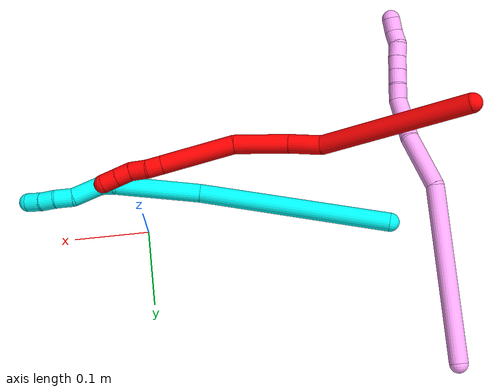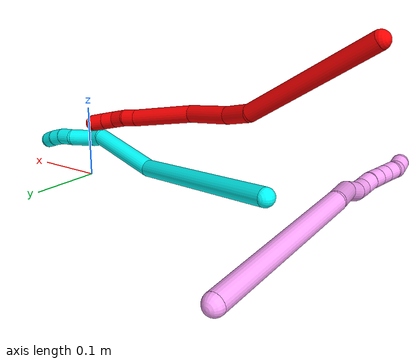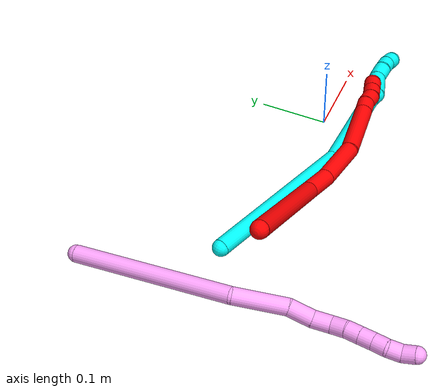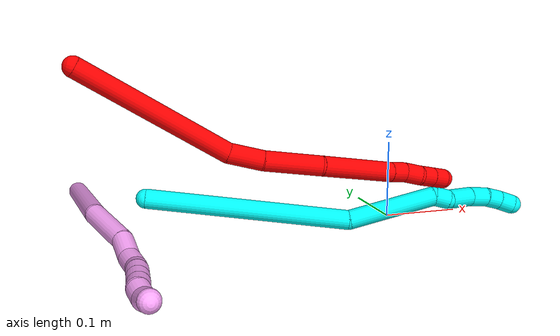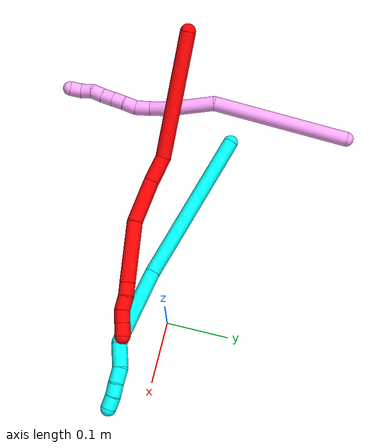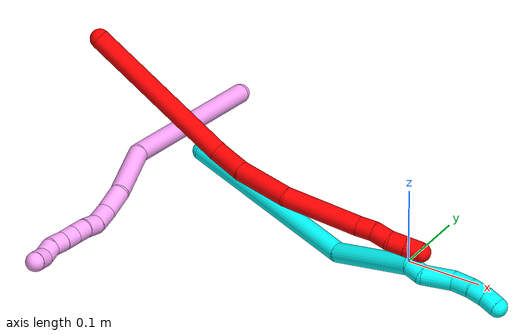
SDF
<sdf version="1.7">
 <world name="default">
  <model name="photoneo_s_sensor">
   <static>1</static>
   <pose>0 0 2 1.57079 1.57079 3.14159</pose>
   <link name="link">
    <inertial><mass>0.1</mass></inertial>
    <sensor name="sensor" type="depth">
     <update_rate>30</update_rate>
     <camera>
      <horizontal_fov>1.22</horizontal_fov>
      <image><width>1920</width><height>1200</height><format>B8G8R8</format></image>
      <clip><near>0.1</near><far>4</far></clip>
      <depth_camera><output>points</output></depth_camera>
     </camera>
     <plugin name="camera_plugin" filename="libgazebo_ros_depth_camera.so">
      <baseline>0.2</baseline>
      <alwaysOn>1</alwaysOn>
      <updateRate>0.0</updateRate>
      <cameraName>camera_ir</cameraName>
      <imageTopicName>/camera/color/image_raw</imageTopicName>
      <cameraInfoTopicName>/camera/color/camera_info</cameraInfoTopicName>
      <depthImageTopicName>/camera/depth/image_raw</depthImageTopicName>
      <depthImageCameraInfoTopicName>/camera/depth/camera_info</depthImageCameraInfoTopicName>
      <pointCloudTopicName>/camera/depth/points</pointCloudTopicName>
      <frameName>fr_optical</frameName>
      <pointCloudCutoff>0.1</pointCloudCutoff>
      <pointCloudCutoffMax>2.0</pointCloudCutoffMax>
      <distortionK1>0</distortionK1>
      <distortionK2>0</distortionK2>
      <distortionK3>0</distortionK3>
      <distortionT1>0</distortionT1>
      <distortionT2>0</distortionT2>
      <CxPrime>0</CxPrime>
      <Cx>0</Cx>
      <Cy>0</Cy>
      <focalLength>0</focalLength>
      <hackBaseline>0</hackBaseline>
     </plugin>
    </sensor>
   </link>
  </model>
  <model name="bin">
   <static>1</static>
   <link name="bottom">
    <collision name="collision-bottom">
     <pose>0 0 -0.01 0 -0 0</pose>
     <geometry><box><size>0.8 0.6 0.02</size></box></geometry>
     <surface>
      <friction><ode><mu>100</mu><mu2>100</mu2></ode></friction>
      <contact><collide_bitmask>65535</collide_bitmask></contact>
     </surface>
    </collision>
   </link>
   <link name="west_wall">
    <collision name="collision-west_wall">
     <pose>-0.41 0 0.1 0 -0 0</pose>
     <geometry><box><size>0.02 0.6 0.2</size></box></geometry>
     <surface>
      <friction><ode><mu>100</mu><mu2>100</mu2></ode></friction>
      <contact><collide_bitmask>65535</collide_bitmask></contact>
     </surface>
    </collision>
   </link>
   <link name="east_wall">
    <collision name="collision-east_wall">
     <pose>0.41 0 0.1 0 -0 0</pose>
     <geometry><box><size>0.02 0.6 0.2</size></box></geometry>
     <surface>
      <friction><ode><mu>100</mu><mu2>100</mu2></ode></friction>
      <contact><collide_bitmask>65535</collide_bitmask></contact>
     </surface>
    </collision>
   </link>
   <link name="south_wall">
    <collision name="collision-south_wall">
     <pose>0 -0.31 0.1 0 -0 0</pose>
     <geometry><box><size>0.8 0.02 0.2</size></box></geometry>
     <surface>
      <friction><ode><mu>100</mu><mu2>100</mu2></ode></friction>
      <contact><collide_bitmask>65535</collide_bitmask></contact>
     </surface>
    </collision>
   </link>
   <link name="north_wall">
    <collision name="collision-north_wall">
     <pose>0 0.31 0.1 0 -0 0</pose>
     <geometry><box><size>0.8 0.02 0.2</size></box></geometry>
     <surface>
      <friction><ode><mu>100</mu><mu2>100</mu2></ode></friction>
      <contact><collide_bitmask>65535</collide_bitmask></contact>
     </surface>
    </collision>
   </link>
  </model>
  <model name="2">
   <static>0</static>
   <link name="2">
    <collision name="collision-cylinder-e_1_1_4">
     <pose>0.002071 0.029109 -0.097416 -2.85123 0.020362 -0.139044</pose>
     <geometry><cylinder><radius>0.0125</radius><length>0.203386</length></cylinder></geometry>
     <surface>
      <friction><ode><mu>1.16</mu><mu2>1.16</mu2><slip1>0</slip1><slip2>0</slip2></ode></friction>
      <contact><ode><kp>1e+06</kp><kd>1</kd><max_vel>0</max_vel><min_depth>0.001</min_depth></ode></contact>
     </surface>
    </collision>
    <visual name="visual-cylinder-e_1_1_4">
     <pose>0.002071 0.029109 -0.097416 -2.85123 0.020362 -0.139044</pose>
     <geometry><cylinder><radius>0.0125</radius><length>0.203386</length></cylinder></geometry>
     <material><ambient>1 0 0 1</ambient></material>
    </visual>
    <collision name="collision-cylinder-e_2_4_5">
     <pose>0.001242 0.056971 -0.216196 3.0833 -0.134659 -2.32543</pose>
     <geometry><cylinder><radius>0.0125</radius><length>0.043192</length></cylinder></geometry>
     <surface>
      <friction><ode><mu>1.16</mu><mu2>1.16</mu2><slip1>0</slip1><slip2>0</slip2></ode></friction>
      <contact><ode><kp>1e+06</kp><kd>1</kd><max_vel>0</max_vel><min_depth>0.001</min_depth></ode></contact>
     </surface>
    </collision>
    <visual name="visual-cylinder-e_2_4_5">
     <pose>0.001242 0.056971 -0.216196 3.0833 -0.134659 -2.32543</pose>
     <geometry><cylinder><radius>0.0125</radius><length>0.043192</length></cylinder></geometry>
     <material><ambient>1 0 0 1</ambient></material>
    </visual>
    <collision name="collision-cylinder-e_3_5_6">
     <pose>-0.002599 0.050371 -0.272838 2.99101 -0.026366 -0.346064</pose>
     <geometry><cylinder><radius>0.0125</radius><length>0.071389</length></cylinder></geometry>
     <surface>
      <friction><ode><mu>1.16</mu><mu2>1.16</mu2><slip1>0</slip1><slip2>0</slip2></ode></friction>
      <contact><ode><kp>1e+06</kp><kd>1</kd><max_vel>0</max_vel><min_depth>0.001</min_depth></ode></contact>
     </surface>
    </collision>
    <visual name="visual-cylinder-e_3_5_6">
     <pose>-0.002599 0.050371 -0.272838 2.99101 -0.026366 -0.346064</pose>
     <geometry><cylinder><radius>0.0125</radius><length>0.071389</length></cylinder></geometry>
     <material><ambient>1 0 0 1</ambient></material>
    </visual>
    <collision name="collision-cylinder-e_4_6_7">
     <pose>0.007319 0.042237 -0.355905 3.08344 0.223071 2.63348</pose>
     <geometry><cylinder><radius>0.0125</radius><length>0.098171</length></cylinder></geometry>
     <surface>
      <friction><ode><mu>1.16</mu><mu2>1.16</mu2><slip1>0</slip1><slip2>0</slip2></ode></friction>
      <contact><ode><kp>1e+06</kp><kd>1</kd><max_vel>0</max_vel><min_depth>0.001</min_depth></ode></contact>
     </surface>
    </collision>
    <visual name="visual-cylinder-e_4_6_7">
     <pose>0.007319 0.042237 -0.355905 3.08344 0.223071 2.63348</pose>
     <geometry><cylinder><radius>0.0125</radius><length>0.098171</length></cylinder></geometry>
     <material><ambient>1 0 0 1</ambient></material>
    </visual>
    <collision name="collision-cylinder-e_5_7_8">
     <pose>0.020771 0.038281 -0.41366 3.02443 0.252845 2.27695</pose>
     <geometry><cylinder><radius>0.0125</radius><length>0.020731</length></cylinder></geometry>
     <surface>
      <friction><ode><mu>1.16</mu><mu2>1.16</mu2><slip1>0</slip1><slip2>0</slip2></ode></friction>
      <contact><ode><kp>1e+06</kp><kd>1</kd><max_vel>0</max_vel><min_depth>0.001</min_depth></ode></contact>
     </surface>
    </collision>
    <visual name="visual-cylinder-e_5_7_8">
     <pose>0.020771 0.038281 -0.41366 3.02443 0.252845 2.27695</pose>
     <geometry><cylinder><radius>0.0125</radius><length>0.020731</length></cylinder></geometry>
     <material><ambient>1 0 0 1</ambient></material>
    </visual>
    <collision name="collision-cylinder-e_6_8_9">
     <pose>0.023921 0.036934 -0.434829 3.12602 0.049661 2.53407</pose>
     <geometry><cylinder><radius>0.0125</radius><length>0.022433</length></cylinder></geometry>
     <surface>
      <friction><ode><mu>1.16</mu><mu2>1.16</mu2><slip1>0</slip1><slip2>0</slip2></ode></friction>
      <contact><ode><kp>1e+06</kp><kd>1</kd><max_vel>0</max_vel><min_depth>0.001</min_depth></ode></contact>
     </surface>
    </collision>
    <visual name="visual-cylinder-e_6_8_9">
     <pose>0.023921 0.036934 -0.434829 3.12602 0.049661 2.53407</pose>
     <geometry><cylinder><radius>0.0125</radius><length>0.022433</length></cylinder></geometry>
     <material><ambient>1 0 0 1</ambient></material>
    </visual>
    <collision name="collision-cylinder-e_7_9_10">
     <pose>0.027798 0.037009 -0.455509 -3.11526 0.336842 -2.98704</pose>
     <geometry><cylinder><radius>0.0125</radius><length>0.020094</length></cylinder></geometry>
     <surface>
      <friction><ode><mu>1.16</mu><mu2>1.16</mu2><slip1>0</slip1><slip2>0</slip2></ode></friction>
      <contact><ode><kp>1e+06</kp><kd>1</kd><max_vel>0</max_vel><min_depth>0.001</min_depth></ode></contact>
     </surface>
    </collision>
    <visual name="visual-cylinder-e_7_9_10">
     <pose>0.027798 0.037009 -0.455509 -3.11526 0.336842 -2.98704</pose>
     <geometry><cylinder><radius>0.0125</radius><length>0.020094</length></cylinder></geometry>
     <material><ambient>1 0 0 1</ambient></material>
    </visual>
    <collision name="collision-cylinder-e_8_10_2">
     <pose>0.034478 0.037571 -0.474722 -3.10948 0.332156 -2.95061</pose>
     <geometry><cylinder><radius>0.0125</radius><length>0.020604</length></cylinder></geometry>
     <surface>
      <friction><ode><mu>1.16</mu><mu2>1.16</mu2><slip1>0</slip1><slip2>0</slip2></ode></friction>
      <contact><ode><kp>1e+06</kp><kd>1</kd><max_vel>0</max_vel><min_depth>0.001</min_depth></ode></contact>
     </surface>
    </collision>
    <visual name="visual-cylinder-e_8_10_2">
     <pose>0.034478 0.037571 -0.474722 -3.10948 0.332156 -2.95061</pose>
     <geometry><cylinder><radius>0.0125</radius><length>0.020604</length></cylinder></geometry>
     <material><ambient>1 0 0 1</ambient></material>
    </visual>
    <collision name="collision-sphere-2">
     <pose>0.037838 0.037884 -0.484456 0 -0 0</pose>
     <geometry><sphere><radius>0.0125</radius></sphere></geometry>
     <surface>
      <friction><ode><mu>1.16</mu><mu2>1.16</mu2><slip1>0</slip1><slip2>0</slip2></ode></friction>
      <contact><ode><kp>1e+06</kp><kd>1</kd><max_vel>0</max_vel><min_depth>0.001</min_depth></ode></contact>
     </surface>
    </collision>
    <visual name="visual-sphere-2">
     <pose>0.037838 0.037884 -0.484456 0 -0 0</pose>
     <geometry><sphere><radius>0.0125</radius></sphere></geometry>
     <material><ambient>1 0 0 1</ambient></material>
    </visual>
    <collision name="collision-sphere-10">
     <pose>0.031119 0.037259 -0.464989 0 -0 0</pose>
     <geometry><sphere><radius>0.0125</radius></sphere></geometry>
     <surface>
      <friction><ode><mu>1.16</mu><mu2>1.16</mu2><slip1>0</slip1><slip2>0</slip2></ode></friction>
      <contact><ode><kp>1e+06</kp><kd>1</kd><max_vel>0</max_vel><min_depth>0.001</min_depth></ode></contact>
     </surface>
    </collision>
    <visual name="visual-sphere-10">
     <pose>0.031119 0.037259 -0.464989 0 -0 0</pose>
     <geometry><sphere><radius>0.0125</radius></sphere></geometry>
     <material><ambient>1 0 0 1</ambient></material>
    </visual>
    <collision name="collision-sphere-9">
     <pose>0.024478 0.036759 -0.44603 0 -0 0</pose>
     <geometry><sphere><radius>0.0125</radius></sphere></geometry>
     <surface>
      <friction><ode><mu>1.16</mu><mu2>1.16</mu2><slip1>0</slip1><slip2>0</slip2></ode></friction>
      <contact><ode><kp>1e+06</kp><kd>1</kd><max_vel>0</max_vel><min_depth>0.001</min_depth></ode></contact>
     </surface>
    </collision>
    <visual name="visual-sphere-9">
     <pose>0.024478 0.036759 -0.44603 0 -0 0</pose>
     <geometry><sphere><radius>0.0125</radius></sphere></geometry>
     <material><ambient>1 0 0 1</ambient></material>
    </visual>
    <collision name="collision-sphere-4">
     <pose>0.004141 0.058217 -0.194831 0 -0 0</pose>
     <geometry><sphere><radius>0.0125</radius></sphere></geometry>
     <surface>
      <friction><ode><mu>1.16</mu><mu2>1.16</mu2><slip1>0</slip1><slip2>0</slip2></ode></friction>
      <contact><ode><kp>1e+06</kp><kd>1</kd><max_vel>0</max_vel><min_depth>0.001</min_depth></ode></contact>
     </surface>
    </collision>
    <visual name="visual-sphere-4">
     <pose>0.004141 0.058217 -0.194831 0 -0 0</pose>
     <geometry><sphere><radius>0.0125</radius></sphere></geometry>
     <material><ambient>1 0 0 1</ambient></material>
    </visual>
    <collision name="collision-sphere-1">
     <geometry><sphere><radius>0.0125</radius></sphere></geometry>
     <surface>
      <friction><ode><mu>1.16</mu><mu2>1.16</mu2><slip1>0</slip1><slip2>0</slip2></ode></friction>
      <contact><ode><kp>1e+06</kp><kd>1</kd><max_vel>0</max_vel><min_depth>0.001</min_depth></ode></contact>
     </surface>
    </collision>
    <visual name="visual-sphere-1">
     <geometry><sphere><radius>0.0125</radius></sphere></geometry>
     <material><ambient>1 0 0 1</ambient></material>
    </visual>
    <collision name="collision-sphere-8">
     <pose>0.023364 0.037108 -0.423627 0 -0 0</pose>
     <geometry><sphere><radius>0.0125</radius></sphere></geometry>
     <surface>
      <friction><ode><mu>1.16</mu><mu2>1.16</mu2><slip1>0</slip1><slip2>0</slip2></ode></friction>
      <contact><ode><kp>1e+06</kp><kd>1</kd><max_vel>0</max_vel><min_depth>0.001</min_depth></ode></contact>
     </surface>
    </collision>
    <visual name="visual-sphere-8">
     <pose>0.023364 0.037108 -0.423627 0 -0 0</pose>
     <geometry><sphere><radius>0.0125</radius></sphere></geometry>
     <material><ambient>1 0 0 1</ambient></material>
    </visual>
    <collision name="collision-sphere-5">
     <pose>-0.001658 0.055724 -0.23756 0 -0 0</pose>
     <geometry><sphere><radius>0.0125</radius></sphere></geometry>
     <surface>
      <friction><ode><mu>1.16</mu><mu2>1.16</mu2><slip1>0</slip1><slip2>0</slip2></ode></friction>
      <contact><ode><kp>1e+06</kp><kd>1</kd><max_vel>0</max_vel><min_depth>0.001</min_depth></ode></contact>
     </surface>
    </collision>
    <visual name="visual-sphere-5">
     <pose>-0.001658 0.055724 -0.23756 0 -0 0</pose>
     <geometry><sphere><radius>0.0125</radius></sphere></geometry>
     <material><ambient>1 0 0 1</ambient></material>
    </visual>
    <collision name="collision-sphere-6">
     <pose>-0.00354 0.045019 -0.308117 0 -0 0</pose>
     <geometry><sphere><radius>0.0125</radius></sphere></geometry>
     <surface>
      <friction><ode><mu>1.16</mu><mu2>1.16</mu2><slip1>0</slip1><slip2>0</slip2></ode></friction>
      <contact><ode><kp>1e+06</kp><kd>1</kd><max_vel>0</max_vel><min_depth>0.001</min_depth></ode></contact>
     </surface>
    </collision>
    <visual name="visual-sphere-6">
     <pose>-0.00354 0.045019 -0.308117 0 -0 0</pose>
     <geometry><sphere><radius>0.0125</radius></sphere></geometry>
     <material><ambient>1 0 0 1</ambient></material>
    </visual>
    <collision name="collision-sphere-7">
     <pose>0.018178 0.039455 -0.403693 0 -0 0</pose>
     <geometry><sphere><radius>0.0125</radius></sphere></geometry>
     <surface>
      <friction><ode><mu>1.16</mu><mu2>1.16</mu2><slip1>0</slip1><slip2>0</slip2></ode></friction>
      <contact><ode><kp>1e+06</kp><kd>1</kd><max_vel>0</max_vel><min_depth>0.001</min_depth></ode></contact>
     </surface>
    </collision>
    <visual name="visual-sphere-7">
     <pose>0.018178 0.039455 -0.403693 0 -0 0</pose>
     <geometry><sphere><radius>0.0125</radius></sphere></geometry>
     <material><ambient>1 0 0 1</ambient></material>
    </visual>
    <inertial>
     <pose>0.006488 0.038527 -0.241665 0 -0 0</pose>
     <mass>0.5</mass>
     <inertia>
      <ixx>0.00058</ixx>
      <ixy>0</ixy>
      <ixz>0</ixz>
      <iyy>-0.000691</iyy>
      <iyz>0</iyz>
      <izz>-0.000263</izz>
     </inertia>
    </inertial>
   </link>
   <pose>-0.40949 -0.06285 0.21949 -1.29478 -0.165984 1.44182</pose>
  </model>
  <model name="3">
   <static>0</static>
   <link name="3">
    <collision name="collision-cylinder-e_1_1_4">
     <pose>0.129439 -0.007885 0.00117 1.42351 1.50929 1.36295</pose>
     <geometry><cylinder><radius>0.0125</radius><length>0.259368</length></cylinder></geometry>
     <surface>
      <friction><ode><mu>1.16</mu><mu2>1.16</mu2><slip1>0</slip1><slip2>0</slip2></ode></friction>
      <contact><ode><kp>1e+06</kp><kd>1</kd><max_vel>0</max_vel><min_depth>0.001</min_depth></ode></contact>
     </surface>
    </collision>
    <visual name="visual-cylinder-e_1_1_4">
     <pose>0.129439 -0.007885 0.00117 1.42351 1.50929 1.36295</pose>
     <geometry><cylinder><radius>0.0125</radius><length>0.259368</length></cylinder></geometry>
     <material><ambient>0.003922 1 0.996078 1</ambient></material>
    </visual>
    <collision name="collision-cylinder-e_2_4_5">
     <pose>0.313753 0.000741 -0.005398 -2.00903 1.25 -1.69699</pose>
     <geometry><cylinder><radius>0.0125</radius><length>0.115651</length></cylinder></geometry>
     <surface>
      <friction><ode><mu>1.16</mu><mu2>1.16</mu2><slip1>0</slip1><slip2>0</slip2></ode></friction>
      <contact><ode><kp>1e+06</kp><kd>1</kd><max_vel>0</max_vel><min_depth>0.001</min_depth></ode></contact>
     </surface>
    </collision>
    <visual name="visual-cylinder-e_2_4_5">
     <pose>0.313753 0.000741 -0.005398 -2.00903 1.25 -1.69699</pose>
     <geometry><cylinder><radius>0.0125</radius><length>0.115651</length></cylinder></geometry>
     <material><ambient>0.003922 1 0.996078 1</ambient></material>
    </visual>
    <collision name="collision-cylinder-e_3_5_6">
     <pose>0.378515 0.015105 -0.014428 2.11282 1.32253 1.88532</pose>
     <geometry><cylinder><radius>0.0125</radius><length>0.020398</length></cylinder></geometry>
     <surface>
      <friction><ode><mu>1.16</mu><mu2>1.16</mu2><slip1>0</slip1><slip2>0</slip2></ode></friction>
      <contact><ode><kp>1e+06</kp><kd>1</kd><max_vel>0</max_vel><min_depth>0.001</min_depth></ode></contact>
     </surface>
    </collision>
    <visual name="visual-cylinder-e_3_5_6">
     <pose>0.378515 0.015105 -0.014428 2.11282 1.32253 1.88532</pose>
     <geometry><cylinder><radius>0.0125</radius><length>0.020398</length></cylinder></geometry>
     <material><ambient>0.003922 1 0.996078 1</ambient></material>
    </visual>
    <collision name="collision-cylinder-e_4_6_7">
     <pose>0.404781 0.013081 -0.02664 -3.13027 0.9828 -3.12043</pose>
     <geometry><cylinder><radius>0.0125</radius><length>0.039372</length></cylinder></geometry>
     <surface>
      <friction><ode><mu>1.16</mu><mu2>1.16</mu2><slip1>0</slip1><slip2>0</slip2></ode></friction>
      <contact><ode><kp>1e+06</kp><kd>1</kd><max_vel>0</max_vel><min_depth>0.001</min_depth></ode></contact>
     </surface>
    </collision>
    <visual name="visual-cylinder-e_4_6_7">
     <pose>0.404781 0.013081 -0.02664 -3.13027 0.9828 -3.12043</pose>
     <geometry><cylinder><radius>0.0125</radius><length>0.039372</length></cylinder></geometry>
     <material><ambient>0.003922 1 0.996078 1</ambient></material>
    </visual>
    <collision name="collision-cylinder-e_5_7_8">
     <pose>0.433065 0.012882 -0.040718 3.03957 1.3101 3.00887</pose>
     <geometry><cylinder><radius>0.0125</radius><length>0.024642</length></cylinder></geometry>
     <surface>
      <friction><ode><mu>1.16</mu><mu2>1.16</mu2><slip1>0</slip1><slip2>0</slip2></ode></friction>
      <contact><ode><kp>1e+06</kp><kd>1</kd><max_vel>0</max_vel><min_depth>0.001</min_depth></ode></contact>
     </surface>
    </collision>
    <visual name="visual-cylinder-e_5_7_8">
     <pose>0.433065 0.012882 -0.040718 3.03957 1.3101 3.00887</pose>
     <geometry><cylinder><radius>0.0125</radius><length>0.024642</length></cylinder></geometry>
     <material><ambient>0.003922 1 0.996078 1</ambient></material>
    </visual>
    <collision name="collision-cylinder-e_6_8_9">
     <pose>0.454488 0.010332 -0.046674 2.46925 1.21158 2.20716</pose>
     <geometry><cylinder><radius>0.0125</radius><length>0.020336</length></cylinder></geometry>
     <surface>
      <friction><ode><mu>1.16</mu><mu2>1.16</mu2><slip1>0</slip1><slip2>0</slip2></ode></friction>
      <contact><ode><kp>1e+06</kp><kd>1</kd><max_vel>0</max_vel><min_depth>0.001</min_depth></ode></contact>
     </surface>
    </collision>
    <visual name="visual-cylinder-e_6_8_9">
     <pose>0.454488 0.010332 -0.046674 2.46925 1.21158 2.20716</pose>
     <geometry><cylinder><radius>0.0125</radius><length>0.020336</length></cylinder></geometry>
     <material><ambient>0.003922 1 0.996078 1</ambient></material>
    </visual>
    <collision name="collision-cylinder-e_7_9_2">
     <pose>0.473609 0.005212 -0.050802 2.00205 1.25051 1.68989</pose>
     <geometry><cylinder><radius>0.0125</radius><length>0.020234</length></cylinder></geometry>
     <surface>
      <friction><ode><mu>1.16</mu><mu2>1.16</mu2><slip1>0</slip1><slip2>0</slip2></ode></friction>
      <contact><ode><kp>1e+06</kp><kd>1</kd><max_vel>0</max_vel><min_depth>0.001</min_depth></ode></contact>
     </surface>
    </collision>
    <visual name="visual-cylinder-e_7_9_2">
     <pose>0.473609 0.005212 -0.050802 2.00205 1.25051 1.68989</pose>
     <geometry><cylinder><radius>0.0125</radius><length>0.020234</length></cylinder></geometry>
     <material><ambient>0.003922 1 0.996078 1</ambient></material>
    </visual>
    <collision name="collision-sphere-2">
     <pose>0.483212 0.002319 -0.052133 0 -0 0</pose>
     <geometry><sphere><radius>0.0125</radius></sphere></geometry>
     <surface>
      <friction><ode><mu>1.16</mu><mu2>1.16</mu2><slip1>0</slip1><slip2>0</slip2></ode></friction>
      <contact><ode><kp>1e+06</kp><kd>1</kd><max_vel>0</max_vel><min_depth>0.001</min_depth></ode></contact>
     </surface>
    </collision>
    <visual name="visual-sphere-2">
     <pose>0.483212 0.002319 -0.052133 0 -0 0</pose>
     <geometry><sphere><radius>0.0125</radius></sphere></geometry>
     <material><ambient>0.003922 1 0.996078 1</ambient></material>
    </visual>
    <collision name="collision-sphere-9">
     <pose>0.464007 0.008106 -0.04947 0 -0 0</pose>
     <geometry><sphere><radius>0.0125</radius></sphere></geometry>
     <surface>
      <friction><ode><mu>1.16</mu><mu2>1.16</mu2><slip1>0</slip1><slip2>0</slip2></ode></friction>
      <contact><ode><kp>1e+06</kp><kd>1</kd><max_vel>0</max_vel><min_depth>0.001</min_depth></ode></contact>
     </surface>
    </collision>
    <visual name="visual-sphere-9">
     <pose>0.464007 0.008106 -0.04947 0 -0 0</pose>
     <geometry><sphere><radius>0.0125</radius></sphere></geometry>
     <material><ambient>0.003922 1 0.996078 1</ambient></material>
    </visual>
    <collision name="collision-sphere-4">
     <pose>0.258878 -0.01577 0.00234 0 -0 0</pose>
     <geometry><sphere><radius>0.0125</radius></sphere></geometry>
     <surface>
      <friction><ode><mu>1.16</mu><mu2>1.16</mu2><slip1>0</slip1><slip2>0</slip2></ode></friction>
      <contact><ode><kp>1e+06</kp><kd>1</kd><max_vel>0</max_vel><min_depth>0.001</min_depth></ode></contact>
     </surface>
    </collision>
    <visual name="visual-sphere-4">
     <pose>0.258878 -0.01577 0.00234 0 -0 0</pose>
     <geometry><sphere><radius>0.0125</radius></sphere></geometry>
     <material><ambient>0.003922 1 0.996078 1</ambient></material>
    </visual>
    <collision name="collision-sphere-1">
     <geometry><sphere><radius>0.0125</radius></sphere></geometry>
     <surface>
      <friction><ode><mu>1.16</mu><mu2>1.16</mu2><slip1>0</slip1><slip2>0</slip2></ode></friction>
      <contact><ode><kp>1e+06</kp><kd>1</kd><max_vel>0</max_vel><min_depth>0.001</min_depth></ode></contact>
     </surface>
    </collision>
    <visual name="visual-sphere-1">
     <geometry><sphere><radius>0.0125</radius></sphere></geometry>
     <material><ambient>0.003922 1 0.996078 1</ambient></material>
    </visual>
    <collision name="collision-sphere-8">
     <pose>0.444969 0.012558 -0.043877 0 -0 0</pose>
     <geometry><sphere><radius>0.0125</radius></sphere></geometry>
     <surface>
      <friction><ode><mu>1.16</mu><mu2>1.16</mu2><slip1>0</slip1><slip2>0</slip2></ode></friction>
      <contact><ode><kp>1e+06</kp><kd>1</kd><max_vel>0</max_vel><min_depth>0.001</min_depth></ode></contact>
     </surface>
    </collision>
    <visual name="visual-sphere-8">
     <pose>0.444969 0.012558 -0.043877 0 -0 0</pose>
     <geometry><sphere><radius>0.0125</radius></sphere></geometry>
     <material><ambient>0.003922 1 0.996078 1</ambient></material>
    </visual>
    <collision name="collision-sphere-5">
     <pose>0.368628 0.017252 -0.013135 0 -0 0</pose>
     <geometry><sphere><radius>0.0125</radius></sphere></geometry>
     <surface>
      <friction><ode><mu>1.16</mu><mu2>1.16</mu2><slip1>0</slip1><slip2>0</slip2></ode></friction>
      <contact><ode><kp>1e+06</kp><kd>1</kd><max_vel>0</max_vel><min_depth>0.001</min_depth></ode></contact>
     </surface>
    </collision>
    <visual name="visual-sphere-5">
     <pose>0.368628 0.017252 -0.013135 0 -0 0</pose>
     <geometry><sphere><radius>0.0125</radius></sphere></geometry>
     <material><ambient>0.003922 1 0.996078 1</ambient></material>
    </visual>
    <collision name="collision-sphere-6">
     <pose>0.388401 0.012958 -0.015721 0 -0 0</pose>
     <geometry><sphere><radius>0.0125</radius></sphere></geometry>
     <surface>
      <friction><ode><mu>1.16</mu><mu2>1.16</mu2><slip1>0</slip1><slip2>0</slip2></ode></friction>
      <contact><ode><kp>1e+06</kp><kd>1</kd><max_vel>0</max_vel><min_depth>0.001</min_depth></ode></contact>
     </surface>
    </collision>
    <visual name="visual-sphere-6">
     <pose>0.388401 0.012958 -0.015721 0 -0 0</pose>
     <geometry><sphere><radius>0.0125</radius></sphere></geometry>
     <material><ambient>0.003922 1 0.996078 1</ambient></material>
    </visual>
    <collision name="collision-sphere-7">
     <pose>0.42116 0.013205 -0.037559 0 -0 0</pose>
     <geometry><sphere><radius>0.0125</radius></sphere></geometry>
     <surface>
      <friction><ode><mu>1.16</mu><mu2>1.16</mu2><slip1>0</slip1><slip2>0</slip2></ode></friction>
      <contact><ode><kp>1e+06</kp><kd>1</kd><max_vel>0</max_vel><min_depth>0.001</min_depth></ode></contact>
     </surface>
    </collision>
    <visual name="visual-sphere-7">
     <pose>0.42116 0.013205 -0.037559 0 -0 0</pose>
     <geometry><sphere><radius>0.0125</radius></sphere></geometry>
     <material><ambient>0.003922 1 0.996078 1</ambient></material>
    </visual>
    <inertial>
     <pose>0.246025 -0.001007 -0.009289 0 -0 0</pose>
     <mass>0.5</mass>
     <inertia>
      <ixx>9.4e-05</ixx>
      <ixy>0</ixy>
      <ixz>0</ixz>
      <iyy>0.00164</iyy>
      <iyz>0</iyz>
      <izz>-0.001552</izz>
     </inertia>
    </inertial>
   </link>
   <pose>-0.320561 0.030148 0.041323 1.54774 0.054575 -0.282407</pose>
  </model>
  <model name="4">
   <static>0</static>
   <link name="4">
    <collision name="collision-cylinder-e_1_1_4">
     <pose>0.00044 0.000142 0.118205 -0.001205 0.003721 -2e-06</pose>
     <geometry><cylinder><radius>0.0125</radius><length>0.236411</length></cylinder></geometry>
     <surface>
      <friction><ode><mu>1.16</mu><mu2>1.16</mu2><slip1>0</slip1><slip2>0</slip2></ode></friction>
      <contact><ode><kp>1e+06</kp><kd>1</kd><max_vel>0</max_vel><min_depth>0.001</min_depth></ode></contact>
     </surface>
    </collision>
    <visual name="visual-cylinder-e_1_1_4">
     <pose>0.00044 0.000142 0.118205 -0.001205 0.003721 -2e-06</pose>
     <geometry><cylinder><radius>0.0125</radius><length>0.236411</length></cylinder></geometry>
     <material><ambient>1 0.65098 0.996078 1</ambient></material>
    </visual>
    <collision name="collision-cylinder-e_2_4_5">
     <pose>3.3e-05 -0.01473 0.272411 0.395112 -0.021709 -0.004346</pose>
     <geometry><cylinder><radius>0.0125</radius><length>0.078033</length></cylinder></geometry>
     <surface>
      <friction><ode><mu>1.16</mu><mu2>1.16</mu2><slip1>0</slip1><slip2>0</slip2></ode></friction>
      <contact><ode><kp>1e+06</kp><kd>1</kd><max_vel>0</max_vel><min_depth>0.001</min_depth></ode></contact>
     </surface>
    </collision>
    <visual name="visual-cylinder-e_2_4_5">
     <pose>3.3e-05 -0.01473 0.272411 0.395112 -0.021709 -0.004346</pose>
     <geometry><cylinder><radius>0.0125</radius><length>0.078033</length></cylinder></geometry>
     <material><ambient>1 0.65098 0.996078 1</ambient></material>
    </visual>
    <collision name="collision-cylinder-e_3_5_6">
     <pose>-0.005608 -0.035205 0.324595 0.32549 -0.273632 -0.045204</pose>
     <geometry><cylinder><radius>0.0125</radius><length>0.035477</length></cylinder></geometry>
     <surface>
      <friction><ode><mu>1.16</mu><mu2>1.16</mu2><slip1>0</slip1><slip2>0</slip2></ode></friction>
      <contact><ode><kp>1e+06</kp><kd>1</kd><max_vel>0</max_vel><min_depth>0.001</min_depth></ode></contact>
     </surface>
    </collision>
    <visual name="visual-cylinder-e_3_5_6">
     <pose>-0.005608 -0.035205 0.324595 0.32549 -0.273632 -0.045204</pose>
     <geometry><cylinder><radius>0.0125</radius><length>0.035477</length></cylinder></geometry>
     <material><ambient>1 0.65098 0.996078 1</ambient></material>
    </visual>
    <collision name="collision-cylinder-e_4_6_7">
     <pose>-0.011485 -0.043747 0.35405 0.228029 -0.079338 -0.00909</pose>
     <geometry><cylinder><radius>0.0125</radius><length>0.027338</length></cylinder></geometry>
     <surface>
      <friction><ode><mu>1.16</mu><mu2>1.16</mu2><slip1>0</slip1><slip2>0</slip2></ode></friction>
      <contact><ode><kp>1e+06</kp><kd>1</kd><max_vel>0</max_vel><min_depth>0.001</min_depth></ode></contact>
     </surface>
    </collision>
    <visual name="visual-cylinder-e_4_6_7">
     <pose>-0.011485 -0.043747 0.35405 0.228029 -0.079338 -0.00909</pose>
     <geometry><cylinder><radius>0.0125</radius><length>0.027338</length></cylinder></geometry>
     <material><ambient>1 0.65098 0.996078 1</ambient></material>
    </visual>
    <collision name="collision-cylinder-e_5_7_8">
     <pose>-0.012567 -0.045448 0.378299 -0.124963 0.000114 -7e-06</pose>
     <geometry><cylinder><radius>0.0125</radius><length>0.022124</length></cylinder></geometry>
     <surface>
      <friction><ode><mu>1.16</mu><mu2>1.16</mu2><slip1>0</slip1><slip2>0</slip2></ode></friction>
      <contact><ode><kp>1e+06</kp><kd>1</kd><max_vel>0</max_vel><min_depth>0.001</min_depth></ode></contact>
     </surface>
    </collision>
    <visual name="visual-cylinder-e_5_7_8">
     <pose>-0.012567 -0.045448 0.378299 -0.124963 0.000114 -7e-06</pose>
     <geometry><cylinder><radius>0.0125</radius><length>0.022124</length></cylinder></geometry>
     <material><ambient>1 0.65098 0.996078 1</ambient></material>
    </visual>
    <collision name="collision-cylinder-e_6_8_9">
     <pose>-0.01411 -0.043772 0.399213 -0.029952 -0.15416 0.002313</pose>
     <geometry><cylinder><radius>0.0125</radius><length>0.020125</length></cylinder></geometry>
     <surface>
      <friction><ode><mu>1.16</mu><mu2>1.16</mu2><slip1>0</slip1><slip2>0</slip2></ode></friction>
      <contact><ode><kp>1e+06</kp><kd>1</kd><max_vel>0</max_vel><min_depth>0.001</min_depth></ode></contact>
     </surface>
    </collision>
    <visual name="visual-cylinder-e_6_8_9">
     <pose>-0.01411 -0.043772 0.399213 -0.029952 -0.15416 0.002313</pose>
     <geometry><cylinder><radius>0.0125</radius><length>0.020125</length></cylinder></geometry>
     <material><ambient>1 0.65098 0.996078 1</ambient></material>
    </visual>
    <collision name="collision-cylinder-e_7_9_10">
     <pose>-0.017133 -0.043181 0.419053 -0.029522 -0.148042 0.002189</pose>
     <geometry><cylinder><radius>0.0125</radius><length>0.020029</length></cylinder></geometry>
     <surface>
      <friction><ode><mu>1.16</mu><mu2>1.16</mu2><slip1>0</slip1><slip2>0</slip2></ode></friction>
      <contact><ode><kp>1e+06</kp><kd>1</kd><max_vel>0</max_vel><min_depth>0.001</min_depth></ode></contact>
     </surface>
    </collision>
    <visual name="visual-cylinder-e_7_9_10">
     <pose>-0.017133 -0.043181 0.419053 -0.029522 -0.148042 0.002189</pose>
     <geometry><cylinder><radius>0.0125</radius><length>0.020029</length></cylinder></geometry>
     <material><ambient>1 0.65098 0.996078 1</ambient></material>
    </visual>
    <collision name="collision-cylinder-e_8_10_11">
     <pose>-0.020139 -0.041888 0.438813 -0.101131 -0.153101 0.007763</pose>
     <geometry><cylinder><radius>0.0125</radius><length>0.020056</length></cylinder></geometry>
     <surface>
      <friction><ode><mu>1.16</mu><mu2>1.16</mu2><slip1>0</slip1><slip2>0</slip2></ode></friction>
      <contact><ode><kp>1e+06</kp><kd>1</kd><max_vel>0</max_vel><min_depth>0.001</min_depth></ode></contact>
     </surface>
    </collision>
    <visual name="visual-cylinder-e_8_10_11">
     <pose>-0.020139 -0.041888 0.438813 -0.101131 -0.153101 0.007763</pose>
     <geometry><cylinder><radius>0.0125</radius><length>0.020056</length></cylinder></geometry>
     <material><ambient>1 0.65098 0.996078 1</ambient></material>
    </visual>
    <collision name="collision-cylinder-e_9_11_12">
     <pose>-0.023162 -0.043654 0.458274 0.280514 -0.148369 -0.020985</pose>
     <geometry><cylinder><radius>0.0125</radius><length>0.020206</length></cylinder></geometry>
     <surface>
      <friction><ode><mu>1.16</mu><mu2>1.16</mu2><slip1>0</slip1><slip2>0</slip2></ode></friction>
      <contact><ode><kp>1e+06</kp><kd>1</kd><max_vel>0</max_vel><min_depth>0.001</min_depth></ode></contact>
     </surface>
    </collision>
    <visual name="visual-cylinder-e_9_11_12">
     <pose>-0.023162 -0.043654 0.458274 0.280514 -0.148369 -0.020985</pose>
     <geometry><cylinder><radius>0.0125</radius><length>0.020206</length></cylinder></geometry>
     <material><ambient>1 0.65098 0.996078 1</ambient></material>
    </visual>
    <collision name="collision-cylinder-e_10_12_2">
     <pose>-0.023058 -0.046474 0.477849 0.005359 0.158772 0.000426</pose>
     <geometry><cylinder><radius>0.0125</radius><length>0.020202</length></cylinder></geometry>
     <surface>
      <friction><ode><mu>1.16</mu><mu2>1.16</mu2><slip1>0</slip1><slip2>0</slip2></ode></friction>
      <contact><ode><kp>1e+06</kp><kd>1</kd><max_vel>0</max_vel><min_depth>0.001</min_depth></ode></contact>
     </surface>
    </collision>
    <visual name="visual-cylinder-e_10_12_2">
     <pose>-0.023058 -0.046474 0.477849 0.005359 0.158772 0.000426</pose>
     <geometry><cylinder><radius>0.0125</radius><length>0.020202</length></cylinder></geometry>
     <material><ambient>1 0.65098 0.996078 1</ambient></material>
    </visual>
    <collision name="collision-sphere-2">
     <pose>-0.021461 -0.046527 0.487823 0 -0 0</pose>
     <geometry><sphere><radius>0.0125</radius></sphere></geometry>
     <surface>
      <friction><ode><mu>1.16</mu><mu2>1.16</mu2><slip1>0</slip1><slip2>0</slip2></ode></friction>
      <contact><ode><kp>1e+06</kp><kd>1</kd><max_vel>0</max_vel><min_depth>0.001</min_depth></ode></contact>
     </surface>
    </collision>
    <visual name="visual-sphere-2">
     <pose>-0.021461 -0.046527 0.487823 0 -0 0</pose>
     <geometry><sphere><radius>0.0125</radius></sphere></geometry>
     <material><ambient>1 0.65098 0.996078 1</ambient></material>
    </visual>
    <collision name="collision-sphere-12">
     <pose>-0.024655 -0.04642 0.467875 0 -0 0</pose>
     <geometry><sphere><radius>0.0125</radius></sphere></geometry>
     <surface>
      <friction><ode><mu>1.16</mu><mu2>1.16</mu2><slip1>0</slip1><slip2>0</slip2></ode></friction>
      <contact><ode><kp>1e+06</kp><kd>1</kd><max_vel>0</max_vel><min_depth>0.001</min_depth></ode></contact>
     </surface>
    </collision>
    <visual name="visual-sphere-12">
     <pose>-0.024655 -0.04642 0.467875 0 -0 0</pose>
     <geometry><sphere><radius>0.0125</radius></sphere></geometry>
     <material><ambient>1 0.65098 0.996078 1</ambient></material>
    </visual>
    <collision name="collision-sphere-11">
     <pose>-0.021668 -0.040888 0.448673 0 -0 0</pose>
     <geometry><sphere><radius>0.0125</radius></sphere></geometry>
     <surface>
      <friction><ode><mu>1.16</mu><mu2>1.16</mu2><slip1>0</slip1><slip2>0</slip2></ode></friction>
      <contact><ode><kp>1e+06</kp><kd>1</kd><max_vel>0</max_vel><min_depth>0.001</min_depth></ode></contact>
     </surface>
    </collision>
    <visual name="visual-sphere-11">
     <pose>-0.021668 -0.040888 0.448673 0 -0 0</pose>
     <geometry><sphere><radius>0.0125</radius></sphere></geometry>
     <material><ambient>1 0.65098 0.996078 1</ambient></material>
    </visual>
    <collision name="collision-sphere-10">
     <pose>-0.01861 -0.042889 0.428953 0 -0 0</pose>
     <geometry><sphere><radius>0.0125</radius></sphere></geometry>
     <surface>
      <friction><ode><mu>1.16</mu><mu2>1.16</mu2><slip1>0</slip1><slip2>0</slip2></ode></friction>
      <contact><ode><kp>1e+06</kp><kd>1</kd><max_vel>0</max_vel><min_depth>0.001</min_depth></ode></contact>
     </surface>
    </collision>
    <visual name="visual-sphere-10">
     <pose>-0.01861 -0.042889 0.428953 0 -0 0</pose>
     <geometry><sphere><radius>0.0125</radius></sphere></geometry>
     <material><ambient>1 0.65098 0.996078 1</ambient></material>
    </visual>
    <collision name="collision-sphere-9">
     <pose>-0.015656 -0.043474 0.409152 0 -0 0</pose>
     <geometry><sphere><radius>0.0125</radius></sphere></geometry>
     <surface>
      <friction><ode><mu>1.16</mu><mu2>1.16</mu2><slip1>0</slip1><slip2>0</slip2></ode></friction>
      <contact><ode><kp>1e+06</kp><kd>1</kd><max_vel>0</max_vel><min_depth>0.001</min_depth></ode></contact>
     </surface>
    </collision>
    <visual name="visual-sphere-9">
     <pose>-0.015656 -0.043474 0.409152 0 -0 0</pose>
     <geometry><sphere><radius>0.0125</radius></sphere></geometry>
     <material><ambient>1 0.65098 0.996078 1</ambient></material>
    </visual>
    <collision name="collision-sphere-4">
     <pose>0.00088 0.000285 0.236409 0 -0 0</pose>
     <geometry><sphere><radius>0.0125</radius></sphere></geometry>
     <surface>
      <friction><ode><mu>1.16</mu><mu2>1.16</mu2><slip1>0</slip1><slip2>0</slip2></ode></friction>
      <contact><ode><kp>1e+06</kp><kd>1</kd><max_vel>0</max_vel><min_depth>0.001</min_depth></ode></contact>
     </surface>
    </collision>
    <visual name="visual-sphere-4">
     <pose>0.00088 0.000285 0.236409 0 -0 0</pose>
     <geometry><sphere><radius>0.0125</radius></sphere></geometry>
     <material><ambient>1 0.65098 0.996078 1</ambient></material>
    </visual>
    <collision name="collision-sphere-1">
     <geometry><sphere><radius>0.0125</radius></sphere></geometry>
     <surface>
      <friction><ode><mu>1.16</mu><mu2>1.16</mu2><slip1>0</slip1><slip2>0</slip2></ode></friction>
      <contact><ode><kp>1e+06</kp><kd>1</kd><max_vel>0</max_vel><min_depth>0.001</min_depth></ode></contact>
     </surface>
    </collision>
    <visual name="visual-sphere-1">
     <geometry><sphere><radius>0.0125</radius></sphere></geometry>
     <material><ambient>1 0.65098 0.996078 1</ambient></material>
    </visual>
    <collision name="collision-sphere-8">
     <pose>-0.012565 -0.044069 0.389275 0 -0 0</pose>
     <geometry><sphere><radius>0.0125</radius></sphere></geometry>
     <surface>
      <friction><ode><mu>1.16</mu><mu2>1.16</mu2><slip1>0</slip1><slip2>0</slip2></ode></friction>
      <contact><ode><kp>1e+06</kp><kd>1</kd><max_vel>0</max_vel><min_depth>0.001</min_depth></ode></contact>
     </surface>
    </collision>
    <visual name="visual-sphere-8">
     <pose>-0.012565 -0.044069 0.389275 0 -0 0</pose>
     <geometry><sphere><radius>0.0125</radius></sphere></geometry>
     <material><ambient>1 0.65098 0.996078 1</ambient></material>
    </visual>
    <collision name="collision-sphere-5">
     <pose>-0.000814 -0.029744 0.308413 0 -0 0</pose>
     <geometry><sphere><radius>0.0125</radius></sphere></geometry>
     <surface>
      <friction><ode><mu>1.16</mu><mu2>1.16</mu2><slip1>0</slip1><slip2>0</slip2></ode></friction>
      <contact><ode><kp>1e+06</kp><kd>1</kd><max_vel>0</max_vel><min_depth>0.001</min_depth></ode></contact>
     </surface>
    </collision>
    <visual name="visual-sphere-5">
     <pose>-0.000814 -0.029744 0.308413 0 -0 0</pose>
     <geometry><sphere><radius>0.0125</radius></sphere></geometry>
     <material><ambient>1 0.65098 0.996078 1</ambient></material>
    </visual>
    <collision name="collision-sphere-6">
     <pose>-0.010401 -0.040666 0.340777 0 -0 0</pose>
     <geometry><sphere><radius>0.0125</radius></sphere></geometry>
     <surface>
      <friction><ode><mu>1.16</mu><mu2>1.16</mu2><slip1>0</slip1><slip2>0</slip2></ode></friction>
      <contact><ode><kp>1e+06</kp><kd>1</kd><max_vel>0</max_vel><min_depth>0.001</min_depth></ode></contact>
     </surface>
    </collision>
    <visual name="visual-sphere-6">
     <pose>-0.010401 -0.040666 0.340777 0 -0 0</pose>
     <geometry><sphere><radius>0.0125</radius></sphere></geometry>
     <material><ambient>1 0.65098 0.996078 1</ambient></material>
    </visual>
    <collision name="collision-sphere-7">
     <pose>-0.012568 -0.046827 0.367323 0 -0 0</pose>
     <geometry><sphere><radius>0.0125</radius></sphere></geometry>
     <surface>
      <friction><ode><mu>1.16</mu><mu2>1.16</mu2><slip1>0</slip1><slip2>0</slip2></ode></friction>
      <contact><ode><kp>1e+06</kp><kd>1</kd><max_vel>0</max_vel><min_depth>0.001</min_depth></ode></contact>
     </surface>
    </collision>
    <visual name="visual-sphere-7">
     <pose>-0.012568 -0.046827 0.367323 0 -0 0</pose>
     <geometry><sphere><radius>0.0125</radius></sphere></geometry>
     <material><ambient>1 0.65098 0.996078 1</ambient></material>
    </visual>
    <inertial>
     <pose>-0.005299 -0.017946 0.245815 0 -0 0</pose>
     <mass>0.5</mass>
     <inertia>
      <ixx>0.001168</ixx>
      <ixy>0</ixy>
      <ixz>0</ixz>
      <iyy>0.001162</iyy>
      <iyz>0</iyz>
      <izz>5.4e-05</izz>
     </inertia>
    </inertial>
   </link>
   <pose>-0.387435 0.220715 0.012006 1.40633 -0.863106 0.120374</pose>
  </model>
 </world>
</sdf>
